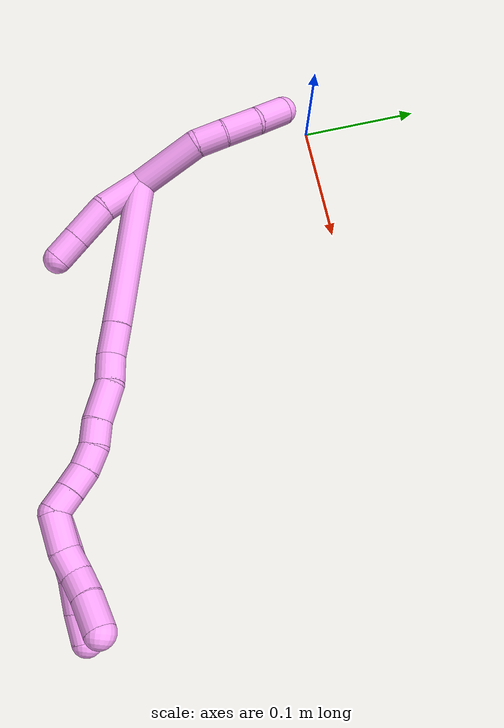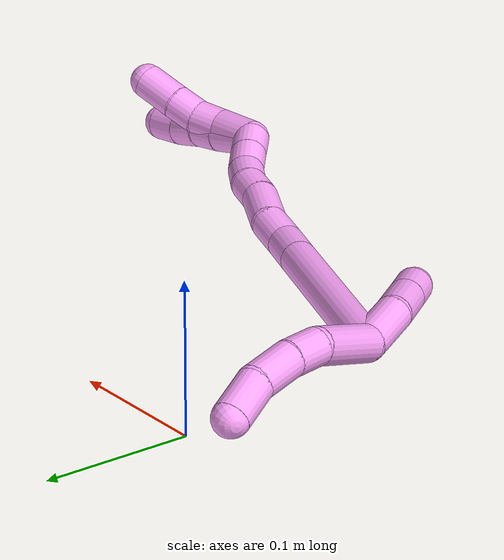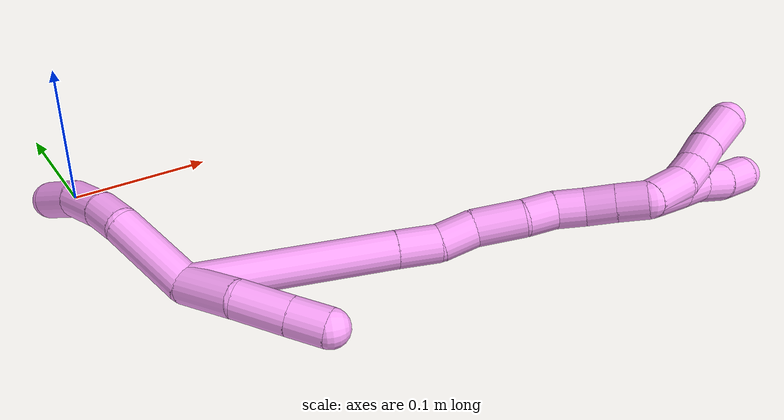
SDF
<sdf version="1.7">
 <world name="default">
  <model name="4">
   <static>0</static>
   <link name="4">
    <collision name="collision-cylinder-e_1_2_8">
     <pose>-0.025122 6e-05 -0.017187 -3.13812 -0.970801 3.13501</pose>
     <geometry><cylinder><radius>0.0125</radius><length>0.060877</length></cylinder></geometry>
     <surface>
      <friction><ode><mu>1.16</mu><mu2>1.16</mu2><slip1>0</slip1><slip2>0</slip2></ode></friction>
      <contact><ode><kp>1e+06</kp><kd>1</kd><max_vel>0</max_vel><min_depth>0.001</min_depth></ode></contact>
     </surface>
    </collision>
    <visual name="visual-cylinder-e_1_2_8">
     <pose>-0.025122 6e-05 -0.017187 -3.13812 -0.970801 3.13501</pose>
     <geometry><cylinder><radius>0.0125</radius><length>0.060877</length></cylinder></geometry>
     <material><ambient>1 0.65098 0.996078 1</ambient></material>
    </visual>
    <collision name="collision-cylinder-e_2_8_9">
     <pose>-0.060521 0.004475 -0.040824 -2.54769 -0.92257 2.03793</pose>
     <geometry><cylinder><radius>0.0125</radius><length>0.025783</length></cylinder></geometry>
     <surface>
      <friction><ode><mu>1.16</mu><mu2>1.16</mu2><slip1>0</slip1><slip2>0</slip2></ode></friction>
      <contact><ode><kp>1e+06</kp><kd>1</kd><max_vel>0</max_vel><min_depth>0.001</min_depth></ode></contact>
     </surface>
    </collision>
    <visual name="visual-cylinder-e_2_8_9">
     <pose>-0.060521 0.004475 -0.040824 -2.54769 -0.92257 2.03793</pose>
     <geometry><cylinder><radius>0.0125</radius><length>0.025783</length></cylinder></geometry>
     <material><ambient>1 0.65098 0.996078 1</ambient></material>
    </visual>
    <collision name="collision-cylinder-e_3_9_10">
     <pose>-0.082228 0.016085 -0.056162 -2.45701 -0.783551 1.71821</pose>
     <geometry><cylinder><radius>0.0125</radius><length>0.03239</length></cylinder></geometry>
     <surface>
      <friction><ode><mu>1.16</mu><mu2>1.16</mu2><slip1>0</slip1><slip2>0</slip2></ode></friction>
      <contact><ode><kp>1e+06</kp><kd>1</kd><max_vel>0</max_vel><min_depth>0.001</min_depth></ode></contact>
     </surface>
    </collision>
    <visual name="visual-cylinder-e_3_9_10">
     <pose>-0.082228 0.016085 -0.056162 -2.45701 -0.783551 1.71821</pose>
     <geometry><cylinder><radius>0.0125</radius><length>0.03239</length></cylinder></geometry>
     <material><ambient>1 0.65098 0.996078 1</ambient></material>
    </visual>
    <collision name="collision-cylinder-e_4_10_6">
     <pose>-0.101335 0.032515 -0.074867 -2.38996 -0.519101 1.18473</pose>
     <geometry><cylinder><radius>0.0125</radius><length>0.03095</length></cylinder></geometry>
     <surface>
      <friction><ode><mu>1.16</mu><mu2>1.16</mu2><slip1>0</slip1><slip2>0</slip2></ode></friction>
      <contact><ode><kp>1e+06</kp><kd>1</kd><max_vel>0</max_vel><min_depth>0.001</min_depth></ode></contact>
     </surface>
    </collision>
    <visual name="visual-cylinder-e_4_10_6">
     <pose>-0.101335 0.032515 -0.074867 -2.38996 -0.519101 1.18473</pose>
     <geometry><cylinder><radius>0.0125</radius><length>0.03095</length></cylinder></geometry>
     <material><ambient>1 0.65098 0.996078 1</ambient></material>
    </visual>
    <collision name="collision-cylinder-e_1_2_11">
     <pose>0.012036 -0.007346 0.014266 0.475509 0.643585 0.161231</pose>
     <geometry><cylinder><radius>0.0125</radius><length>0.040117</length></cylinder></geometry>
     <surface>
      <friction><ode><mu>1.16</mu><mu2>1.16</mu2><slip1>0</slip1><slip2>0</slip2></ode></friction>
      <contact><ode><kp>1e+06</kp><kd>1</kd><max_vel>0</max_vel><min_depth>0.001</min_depth></ode></contact>
     </surface>
    </collision>
    <visual name="visual-cylinder-e_1_2_11">
     <pose>0.012036 -0.007346 0.014266 0.475509 0.643585 0.161231</pose>
     <geometry><cylinder><radius>0.0125</radius><length>0.040117</length></cylinder></geometry>
     <material><ambient>1 0.65098 0.996078 1</ambient></material>
    </visual>
    <collision name="collision-cylinder-e_2_11_12">
     <pose>0.033848 -0.016726 0.043097 0.138828 0.586593 0.041988</pose>
     <geometry><cylinder><radius>0.0125</radius><length>0.035318</length></cylinder></geometry>
     <surface>
      <friction><ode><mu>1.16</mu><mu2>1.16</mu2><slip1>0</slip1><slip2>0</slip2></ode></friction>
      <contact><ode><kp>1e+06</kp><kd>1</kd><max_vel>0</max_vel><min_depth>0.001</min_depth></ode></contact>
     </surface>
    </collision>
    <visual name="visual-cylinder-e_2_11_12">
     <pose>0.033848 -0.016726 0.043097 0.138828 0.586593 0.041988</pose>
     <geometry><cylinder><radius>0.0125</radius><length>0.035318</length></cylinder></geometry>
     <material><ambient>1 0.65098 0.996078 1</ambient></material>
    </visual>
    <collision name="collision-cylinder-e_3_12_5">
     <pose>0.05032 -0.020244 0.067851 0.144522 0.576696 0.042936</pose>
     <geometry><cylinder><radius>0.0125</radius><length>0.024565</length></cylinder></geometry>
     <surface>
      <friction><ode><mu>1.16</mu><mu2>1.16</mu2><slip1>0</slip1><slip2>0</slip2></ode></friction>
      <contact><ode><kp>1e+06</kp><kd>1</kd><max_vel>0</max_vel><min_depth>0.001</min_depth></ode></contact>
     </surface>
    </collision>
    <visual name="visual-cylinder-e_3_12_5">
     <pose>0.05032 -0.020244 0.067851 0.144522 0.576696 0.042936</pose>
     <geometry><cylinder><radius>0.0125</radius><length>0.024565</length></cylinder></geometry>
     <material><ambient>1 0.65098 0.996078 1</ambient></material>
    </visual>
    <collision name="collision-cylinder-e_1_2_13">
     <pose>-1.6e-05 6e-05 0.066316 -0.00091 -0.000236 0</pose>
     <geometry><cylinder><radius>0.0125</radius><length>0.132632</length></cylinder></geometry>
     <surface>
      <friction><ode><mu>1.16</mu><mu2>1.16</mu2><slip1>0</slip1><slip2>0</slip2></ode></friction>
      <contact><ode><kp>1e+06</kp><kd>1</kd><max_vel>0</max_vel><min_depth>0.001</min_depth></ode></contact>
     </surface>
    </collision>
    <visual name="visual-cylinder-e_1_2_13">
     <pose>-1.6e-05 6e-05 0.066316 -0.00091 -0.000236 0</pose>
     <geometry><cylinder><radius>0.0125</radius><length>0.132632</length></cylinder></geometry>
     <material><ambient>1 0.65098 0.996078 1</ambient></material>
    </visual>
    <collision name="collision-cylinder-e_2_13_14">
     <pose>0.000232 0.000194 0.146658 -0.005226 0.018745 -4.9e-05</pose>
     <geometry><cylinder><radius>0.0125</radius><length>0.028057</length></cylinder></geometry>
     <surface>
      <friction><ode><mu>1.16</mu><mu2>1.16</mu2><slip1>0</slip1><slip2>0</slip2></ode></friction>
      <contact><ode><kp>1e+06</kp><kd>1</kd><max_vel>0</max_vel><min_depth>0.001</min_depth></ode></contact>
     </surface>
    </collision>
    <visual name="visual-cylinder-e_2_13_14">
     <pose>0.000232 0.000194 0.146658 -0.005226 0.018745 -4.9e-05</pose>
     <geometry><cylinder><radius>0.0125</radius><length>0.028057</length></cylinder></geometry>
     <material><ambient>1 0.65098 0.996078 1</ambient></material>
    </visual>
    <collision name="collision-cylinder-e_3_14_15">
     <pose>-0.002105 -0.001073 0.172762 0.110488 -0.21071 -0.011695</pose>
     <geometry><cylinder><radius>0.0125</radius><length>0.024854</length></cylinder></geometry>
     <surface>
      <friction><ode><mu>1.16</mu><mu2>1.16</mu2><slip1>0</slip1><slip2>0</slip2></ode></friction>
      <contact><ode><kp>1e+06</kp><kd>1</kd><max_vel>0</max_vel><min_depth>0.001</min_depth></ode></contact>
     </surface>
    </collision>
    <visual name="visual-cylinder-e_3_14_15">
     <pose>-0.002105 -0.001073 0.172762 0.110488 -0.21071 -0.011695</pose>
     <geometry><cylinder><radius>0.0125</radius><length>0.024854</length></cylinder></geometry>
     <material><ambient>1 0.65098 0.996078 1</ambient></material>
    </visual>
    <collision name="collision-cylinder-e_4_15_16">
     <pose>-0.00369 -0.005214 0.20124 0.169166 0.060851 0.005161</pose>
     <geometry><cylinder><radius>0.0125</radius><length>0.033338</length></cylinder></geometry>
     <surface>
      <friction><ode><mu>1.16</mu><mu2>1.16</mu2><slip1>0</slip1><slip2>0</slip2></ode></friction>
      <contact><ode><kp>1e+06</kp><kd>1</kd><max_vel>0</max_vel><min_depth>0.001</min_depth></ode></contact>
     </surface>
    </collision>
    <visual name="visual-cylinder-e_4_15_16">
     <pose>-0.00369 -0.005214 0.20124 0.169166 0.060851 0.005161</pose>
     <geometry><cylinder><radius>0.0125</radius><length>0.033338</length></cylinder></geometry>
     <material><ambient>1 0.65098 0.996078 1</ambient></material>
    </visual>
    <collision name="collision-cylinder-e_5_16_17">
     <pose>-0.003626 -0.008486 0.227947 0.045695 -0.091805 -0.002099</pose>
     <geometry><cylinder><radius>0.0125</radius><length>0.020721</length></cylinder></geometry>
     <surface>
      <friction><ode><mu>1.16</mu><mu2>1.16</mu2><slip1>0</slip1><slip2>0</slip2></ode></friction>
      <contact><ode><kp>1e+06</kp><kd>1</kd><max_vel>0</max_vel><min_depth>0.001</min_depth></ode></contact>
     </surface>
    </collision>
    <visual name="visual-cylinder-e_5_16_17">
     <pose>-0.003626 -0.008486 0.227947 0.045695 -0.091805 -0.002099</pose>
     <geometry><cylinder><radius>0.0125</radius><length>0.020721</length></cylinder></geometry>
     <material><ambient>1 0.65098 0.996078 1</ambient></material>
    </visual>
    <collision name="collision-cylinder-e_6_17_18">
     <pose>-0.002875 -0.010451 0.248002 0.152041 0.170823 0.013043</pose>
     <geometry><cylinder><radius>0.0125</radius><length>0.020017</length></cylinder></geometry>
     <surface>
      <friction><ode><mu>1.16</mu><mu2>1.16</mu2><slip1>0</slip1><slip2>0</slip2></ode></friction>
      <contact><ode><kp>1e+06</kp><kd>1</kd><max_vel>0</max_vel><min_depth>0.001</min_depth></ode></contact>
     </surface>
    </collision>
    <visual name="visual-cylinder-e_6_17_18">
     <pose>-0.002875 -0.010451 0.248002 0.152041 0.170823 0.013043</pose>
     <geometry><cylinder><radius>0.0125</radius><length>0.020017</length></cylinder></geometry>
     <material><ambient>1 0.65098 0.996078 1</ambient></material>
    </visual>
    <collision name="collision-cylinder-e_7_18_19">
     <pose>0.00142 -0.015522 0.266906 0.372471 0.257931 0.048861</pose>
     <geometry><cylinder><radius>0.0125</radius><length>0.020329</length></cylinder></geometry>
     <surface>
      <friction><ode><mu>1.16</mu><mu2>1.16</mu2><slip1>0</slip1><slip2>0</slip2></ode></friction>
      <contact><ode><kp>1e+06</kp><kd>1</kd><max_vel>0</max_vel><min_depth>0.001</min_depth></ode></contact>
     </surface>
    </collision>
    <visual name="visual-cylinder-e_7_18_19">
     <pose>0.00142 -0.015522 0.266906 0.372471 0.257931 0.048861</pose>
     <geometry><cylinder><radius>0.0125</radius><length>0.020329</length></cylinder></geometry>
     <material><ambient>1 0.65098 0.996078 1</ambient></material>
    </visual>
    <collision name="collision-cylinder-e_8_19_1">
     <pose>0.006873 -0.022601 0.285008 0.373135 0.289353 0.054989</pose>
     <geometry><cylinder><radius>0.0125</radius><length>0.020051</length></cylinder></geometry>
     <surface>
      <friction><ode><mu>1.16</mu><mu2>1.16</mu2><slip1>0</slip1><slip2>0</slip2></ode></friction>
      <contact><ode><kp>1e+06</kp><kd>1</kd><max_vel>0</max_vel><min_depth>0.001</min_depth></ode></contact>
     </surface>
    </collision>
    <visual name="visual-cylinder-e_8_19_1">
     <pose>0.006873 -0.022601 0.285008 0.373135 0.289353 0.054989</pose>
     <geometry><cylinder><radius>0.0125</radius><length>0.020051</length></cylinder></geometry>
     <material><ambient>1 0.65098 0.996078 1</ambient></material>
    </visual>
    <collision name="collision-cylinder-e_1_1_20">
     <pose>0.004739 -0.020479 0.307469 -0.394504 -0.328844 0.066294</pose>
     <geometry><cylinder><radius>0.0125</radius><length>0.030931</length></cylinder></geometry>
     <surface>
      <friction><ode><mu>1.16</mu><mu2>1.16</mu2><slip1>0</slip1><slip2>0</slip2></ode></friction>
      <contact><ode><kp>1e+06</kp><kd>1</kd><max_vel>0</max_vel><min_depth>0.001</min_depth></ode></contact>
     </surface>
    </collision>
    <visual name="visual-cylinder-e_1_1_20">
     <pose>0.004739 -0.020479 0.307469 -0.394504 -0.328844 0.066294</pose>
     <geometry><cylinder><radius>0.0125</radius><length>0.030931</length></cylinder></geometry>
     <material><ambient>1 0.65098 0.996078 1</ambient></material>
    </visual>
    <collision name="collision-cylinder-e_2_20_21">
     <pose>-0.003625 -0.011848 0.330178 -0.315801 -0.335167 0.05386</pose>
     <geometry><cylinder><radius>0.0125</radius><length>0.020491</length></cylinder></geometry>
     <surface>
      <friction><ode><mu>1.16</mu><mu2>1.16</mu2><slip1>0</slip1><slip2>0</slip2></ode></friction>
      <contact><ode><kp>1e+06</kp><kd>1</kd><max_vel>0</max_vel><min_depth>0.001</min_depth></ode></contact>
     </surface>
    </collision>
    <visual name="visual-cylinder-e_2_20_21">
     <pose>-0.003625 -0.011848 0.330178 -0.315801 -0.335167 0.05386</pose>
     <geometry><cylinder><radius>0.0125</radius><length>0.020491</length></cylinder></geometry>
     <material><ambient>1 0.65098 0.996078 1</ambient></material>
    </visual>
    <collision name="collision-cylinder-e_3_21_22">
     <pose>-0.008817 -0.00423 0.35086 -0.38192 -0.146156 0.028303</pose>
     <geometry><cylinder><radius>0.0125</radius><length>0.025022</length></cylinder></geometry>
     <surface>
      <friction><ode><mu>1.16</mu><mu2>1.16</mu2><slip1>0</slip1><slip2>0</slip2></ode></friction>
      <contact><ode><kp>1e+06</kp><kd>1</kd><max_vel>0</max_vel><min_depth>0.001</min_depth></ode></contact>
     </surface>
    </collision>
    <visual name="visual-cylinder-e_3_21_22">
     <pose>-0.008817 -0.00423 0.35086 -0.38192 -0.146156 0.028303</pose>
     <geometry><cylinder><radius>0.0125</radius><length>0.025022</length></cylinder></geometry>
     <material><ambient>1 0.65098 0.996078 1</ambient></material>
    </visual>
    <collision name="collision-cylinder-e_4_22_4">
     <pose>-0.014286 0.003523 0.373096 -0.284172 -0.314809 0.045401</pose>
     <geometry><cylinder><radius>0.0125</radius><length>0.023556</length></cylinder></geometry>
     <surface>
      <friction><ode><mu>1.16</mu><mu2>1.16</mu2><slip1>0</slip1><slip2>0</slip2></ode></friction>
      <contact><ode><kp>1e+06</kp><kd>1</kd><max_vel>0</max_vel><min_depth>0.001</min_depth></ode></contact>
     </surface>
    </collision>
    <visual name="visual-cylinder-e_4_22_4">
     <pose>-0.014286 0.003523 0.373096 -0.284172 -0.314809 0.045401</pose>
     <geometry><cylinder><radius>0.0125</radius><length>0.023556</length></cylinder></geometry>
     <material><ambient>1 0.65098 0.996078 1</ambient></material>
    </visual>
    <collision name="collision-cylinder-e_1_1_23">
     <pose>0.003855 -0.023156 0.307843 -0.209207 -0.392608 0.04175</pose>
     <geometry><cylinder><radius>0.0125</radius><length>0.030731</length></cylinder></geometry>
     <surface>
      <friction><ode><mu>1.16</mu><mu2>1.16</mu2><slip1>0</slip1><slip2>0</slip2></ode></friction>
      <contact><ode><kp>1e+06</kp><kd>1</kd><max_vel>0</max_vel><min_depth>0.001</min_depth></ode></contact>
     </surface>
    </collision>
    <visual name="visual-cylinder-e_1_1_23">
     <pose>0.003855 -0.023156 0.307843 -0.209207 -0.392608 0.04175</pose>
     <geometry><cylinder><radius>0.0125</radius><length>0.030731</length></cylinder></geometry>
     <material><ambient>1 0.65098 0.996078 1</ambient></material>
    </visual>
    <collision name="collision-cylinder-e_2_23_24">
     <pose>-0.008389 -0.018649 0.32971 -0.192853 -0.664227 0.066695</pose>
     <geometry><cylinder><radius>0.0125</radius><length>0.020652</length></cylinder></geometry>
     <surface>
      <friction><ode><mu>1.16</mu><mu2>1.16</mu2><slip1>0</slip1><slip2>0</slip2></ode></friction>
      <contact><ode><kp>1e+06</kp><kd>1</kd><max_vel>0</max_vel><min_depth>0.001</min_depth></ode></contact>
     </surface>
    </collision>
    <visual name="visual-cylinder-e_2_23_24">
     <pose>-0.008389 -0.018649 0.32971 -0.192853 -0.664227 0.066695</pose>
     <geometry><cylinder><radius>0.0125</radius><length>0.020652</length></cylinder></geometry>
     <material><ambient>1 0.65098 0.996078 1</ambient></material>
    </visual>
    <collision name="collision-cylinder-e_3_24_25">
     <pose>-0.021516 -0.018024 0.345016 0.12666 -0.741249 -0.049274</pose>
     <geometry><cylinder><radius>0.0125</radius><length>0.020026</length></cylinder></geometry>
     <surface>
      <friction><ode><mu>1.16</mu><mu2>1.16</mu2><slip1>0</slip1><slip2>0</slip2></ode></friction>
      <contact><ode><kp>1e+06</kp><kd>1</kd><max_vel>0</max_vel><min_depth>0.001</min_depth></ode></contact>
     </surface>
    </collision>
    <visual name="visual-cylinder-e_3_24_25">
     <pose>-0.021516 -0.018024 0.345016 0.12666 -0.741249 -0.049274</pose>
     <geometry><cylinder><radius>0.0125</radius><length>0.020026</length></cylinder></geometry>
     <material><ambient>1 0.65098 0.996078 1</ambient></material>
    </visual>
    <collision name="collision-cylinder-e_4_25_3">
     <pose>-0.036952 -0.020166 0.363641 0.10662 -0.652094 -0.03608</pose>
     <geometry><cylinder><radius>0.0125</radius><length>0.028591</length></cylinder></geometry>
     <surface>
      <friction><ode><mu>1.16</mu><mu2>1.16</mu2><slip1>0</slip1><slip2>0</slip2></ode></friction>
      <contact><ode><kp>1e+06</kp><kd>1</kd><max_vel>0</max_vel><min_depth>0.001</min_depth></ode></contact>
     </surface>
    </collision>
    <visual name="visual-cylinder-e_4_25_3">
     <pose>-0.036952 -0.020166 0.363641 0.10662 -0.652094 -0.03608</pose>
     <geometry><cylinder><radius>0.0125</radius><length>0.028591</length></cylinder></geometry>
     <material><ambient>1 0.65098 0.996078 1</ambient></material>
    </visual>
    <collision name="collision-sphere-3">
     <pose>-0.045627 -0.021375 0.374938 0 -0 0</pose>
     <geometry><sphere><radius>0.0125</radius></sphere></geometry>
     <surface>
      <friction><ode><mu>1.16</mu><mu2>1.16</mu2><slip1>0</slip1><slip2>0</slip2></ode></friction>
      <contact><ode><kp>1e+06</kp><kd>1</kd><max_vel>0</max_vel><min_depth>0.001</min_depth></ode></contact>
     </surface>
    </collision>
    <visual name="visual-sphere-3">
     <pose>-0.045627 -0.021375 0.374938 0 -0 0</pose>
     <geometry><sphere><radius>0.0125</radius></sphere></geometry>
     <material><ambient>1 0.65098 0.996078 1</ambient></material>
    </visual>
    <collision name="collision-sphere-25">
     <pose>-0.028277 -0.018957 0.352343 0 -0 0</pose>
     <geometry><sphere><radius>0.0125</radius></sphere></geometry>
     <surface>
      <friction><ode><mu>1.16</mu><mu2>1.16</mu2><slip1>0</slip1><slip2>0</slip2></ode></friction>
      <contact><ode><kp>1e+06</kp><kd>1</kd><max_vel>0</max_vel><min_depth>0.001</min_depth></ode></contact>
     </surface>
    </collision>
    <visual name="visual-sphere-25">
     <pose>-0.028277 -0.018957 0.352343 0 -0 0</pose>
     <geometry><sphere><radius>0.0125</radius></sphere></geometry>
     <material><ambient>1 0.65098 0.996078 1</ambient></material>
    </visual>
    <collision name="collision-sphere-24">
     <pose>-0.014755 -0.017091 0.33769 0 -0 0</pose>
     <geometry><sphere><radius>0.0125</radius></sphere></geometry>
     <surface>
      <friction><ode><mu>1.16</mu><mu2>1.16</mu2><slip1>0</slip1><slip2>0</slip2></ode></friction>
      <contact><ode><kp>1e+06</kp><kd>1</kd><max_vel>0</max_vel><min_depth>0.001</min_depth></ode></contact>
     </surface>
    </collision>
    <visual name="visual-sphere-24">
     <pose>-0.014755 -0.017091 0.33769 0 -0 0</pose>
     <geometry><sphere><radius>0.0125</radius></sphere></geometry>
     <material><ambient>1 0.65098 0.996078 1</ambient></material>
    </visual>
    <collision name="collision-sphere-23">
     <pose>-0.002024 -0.020207 0.32173 0 -0 0</pose>
     <geometry><sphere><radius>0.0125</radius></sphere></geometry>
     <surface>
      <friction><ode><mu>1.16</mu><mu2>1.16</mu2><slip1>0</slip1><slip2>0</slip2></ode></friction>
      <contact><ode><kp>1e+06</kp><kd>1</kd><max_vel>0</max_vel><min_depth>0.001</min_depth></ode></contact>
     </surface>
    </collision>
    <visual name="visual-sphere-23">
     <pose>-0.002024 -0.020207 0.32173 0 -0 0</pose>
     <geometry><sphere><radius>0.0125</radius></sphere></geometry>
     <material><ambient>1 0.65098 0.996078 1</ambient></material>
    </visual>
    <collision name="collision-sphere-4">
     <pose>-0.017933 0.006663 0.383847 0 -0 0</pose>
     <geometry><sphere><radius>0.0125</radius></sphere></geometry>
     <surface>
      <friction><ode><mu>1.16</mu><mu2>1.16</mu2><slip1>0</slip1><slip2>0</slip2></ode></friction>
      <contact><ode><kp>1e+06</kp><kd>1</kd><max_vel>0</max_vel><min_depth>0.001</min_depth></ode></contact>
     </surface>
    </collision>
    <visual name="visual-sphere-4">
     <pose>-0.017933 0.006663 0.383847 0 -0 0</pose>
     <geometry><sphere><radius>0.0125</radius></sphere></geometry>
     <material><ambient>1 0.65098 0.996078 1</ambient></material>
    </visual>
    <collision name="collision-sphere-22">
     <pose>-0.010639 0.000383 0.362346 0 -0 0</pose>
     <geometry><sphere><radius>0.0125</radius></sphere></geometry>
     <surface>
      <friction><ode><mu>1.16</mu><mu2>1.16</mu2><slip1>0</slip1><slip2>0</slip2></ode></friction>
      <contact><ode><kp>1e+06</kp><kd>1</kd><max_vel>0</max_vel><min_depth>0.001</min_depth></ode></contact>
     </surface>
    </collision>
    <visual name="visual-sphere-22">
     <pose>-0.010639 0.000383 0.362346 0 -0 0</pose>
     <geometry><sphere><radius>0.0125</radius></sphere></geometry>
     <material><ambient>1 0.65098 0.996078 1</ambient></material>
    </visual>
    <collision name="collision-sphere-21">
     <pose>-0.006995 -0.008843 0.339375 0 -0 0</pose>
     <geometry><sphere><radius>0.0125</radius></sphere></geometry>
     <surface>
      <friction><ode><mu>1.16</mu><mu2>1.16</mu2><slip1>0</slip1><slip2>0</slip2></ode></friction>
      <contact><ode><kp>1e+06</kp><kd>1</kd><max_vel>0</max_vel><min_depth>0.001</min_depth></ode></contact>
     </surface>
    </collision>
    <visual name="visual-sphere-21">
     <pose>-0.006995 -0.008843 0.339375 0 -0 0</pose>
     <geometry><sphere><radius>0.0125</radius></sphere></geometry>
     <material><ambient>1 0.65098 0.996078 1</ambient></material>
    </visual>
    <collision name="collision-sphere-20">
     <pose>-0.000255 -0.014853 0.320981 0 -0 0</pose>
     <geometry><sphere><radius>0.0125</radius></sphere></geometry>
     <surface>
      <friction><ode><mu>1.16</mu><mu2>1.16</mu2><slip1>0</slip1><slip2>0</slip2></ode></friction>
      <contact><ode><kp>1e+06</kp><kd>1</kd><max_vel>0</max_vel><min_depth>0.001</min_depth></ode></contact>
     </surface>
    </collision>
    <visual name="visual-sphere-20">
     <pose>-0.000255 -0.014853 0.320981 0 -0 0</pose>
     <geometry><sphere><radius>0.0125</radius></sphere></geometry>
     <material><ambient>1 0.65098 0.996078 1</ambient></material>
    </visual>
    <collision name="collision-sphere-11">
     <pose>0.024073 -0.014691 0.028531 0 -0 0</pose>
     <geometry><sphere><radius>0.0125</radius></sphere></geometry>
     <surface>
      <friction><ode><mu>1.16</mu><mu2>1.16</mu2><slip1>0</slip1><slip2>0</slip2></ode></friction>
      <contact><ode><kp>1e+06</kp><kd>1</kd><max_vel>0</max_vel><min_depth>0.001</min_depth></ode></contact>
     </surface>
    </collision>
    <visual name="visual-sphere-11">
     <pose>0.024073 -0.014691 0.028531 0 -0 0</pose>
     <geometry><sphere><radius>0.0125</radius></sphere></geometry>
     <material><ambient>1 0.65098 0.996078 1</ambient></material>
    </visual>
    <collision name="collision-sphere-6">
     <pose>-0.109012 0.04169 -0.084683 0 -0 0</pose>
     <geometry><sphere><radius>0.0125</radius></sphere></geometry>
     <surface>
      <friction><ode><mu>1.16</mu><mu2>1.16</mu2><slip1>0</slip1><slip2>0</slip2></ode></friction>
      <contact><ode><kp>1e+06</kp><kd>1</kd><max_vel>0</max_vel><min_depth>0.001</min_depth></ode></contact>
     </surface>
    </collision>
    <visual name="visual-sphere-6">
     <pose>-0.109012 0.04169 -0.084683 0 -0 0</pose>
     <geometry><sphere><radius>0.0125</radius></sphere></geometry>
     <material><ambient>1 0.65098 0.996078 1</ambient></material>
    </visual>
    <collision name="collision-sphere-10">
     <pose>-0.093658 0.02334 -0.06505 0 -0 0</pose>
     <geometry><sphere><radius>0.0125</radius></sphere></geometry>
     <surface>
      <friction><ode><mu>1.16</mu><mu2>1.16</mu2><slip1>0</slip1><slip2>0</slip2></ode></friction>
      <contact><ode><kp>1e+06</kp><kd>1</kd><max_vel>0</max_vel><min_depth>0.001</min_depth></ode></contact>
     </surface>
    </collision>
    <visual name="visual-sphere-10">
     <pose>-0.093658 0.02334 -0.06505 0 -0 0</pose>
     <geometry><sphere><radius>0.0125</radius></sphere></geometry>
     <material><ambient>1 0.65098 0.996078 1</ambient></material>
    </visual>
    <collision name="collision-sphere-9">
     <pose>-0.070797 0.008831 -0.047275 0 -0 0</pose>
     <geometry><sphere><radius>0.0125</radius></sphere></geometry>
     <surface>
      <friction><ode><mu>1.16</mu><mu2>1.16</mu2><slip1>0</slip1><slip2>0</slip2></ode></friction>
      <contact><ode><kp>1e+06</kp><kd>1</kd><max_vel>0</max_vel><min_depth>0.001</min_depth></ode></contact>
     </surface>
    </collision>
    <visual name="visual-sphere-9">
     <pose>-0.070797 0.008831 -0.047275 0 -0 0</pose>
     <geometry><sphere><radius>0.0125</radius></sphere></geometry>
     <material><ambient>1 0.65098 0.996078 1</ambient></material>
    </visual>
    <collision name="collision-sphere-2">
     <geometry><sphere><radius>0.0125</radius></sphere></geometry>
     <surface>
      <friction><ode><mu>1.16</mu><mu2>1.16</mu2><slip1>0</slip1><slip2>0</slip2></ode></friction>
      <contact><ode><kp>1e+06</kp><kd>1</kd><max_vel>0</max_vel><min_depth>0.001</min_depth></ode></contact>
     </surface>
    </collision>
    <visual name="visual-sphere-2">
     <geometry><sphere><radius>0.0125</radius></sphere></geometry>
     <material><ambient>1 0.65098 0.996078 1</ambient></material>
    </visual>
    <collision name="collision-sphere-19">
     <pose>0.004012 -0.019099 0.276061 0 -0 0</pose>
     <geometry><sphere><radius>0.0125</radius></sphere></geometry>
     <surface>
      <friction><ode><mu>1.16</mu><mu2>1.16</mu2><slip1>0</slip1><slip2>0</slip2></ode></friction>
      <contact><ode><kp>1e+06</kp><kd>1</kd><max_vel>0</max_vel><min_depth>0.001</min_depth></ode></contact>
     </surface>
    </collision>
    <visual name="visual-sphere-19">
     <pose>0.004012 -0.019099 0.276061 0 -0 0</pose>
     <geometry><sphere><radius>0.0125</radius></sphere></geometry>
     <material><ambient>1 0.65098 0.996078 1</ambient></material>
    </visual>
    <collision name="collision-sphere-8">
     <pose>-0.050244 0.000119 -0.034373 0 -0 0</pose>
     <geometry><sphere><radius>0.0125</radius></sphere></geometry>
     <surface>
      <friction><ode><mu>1.16</mu><mu2>1.16</mu2><slip1>0</slip1><slip2>0</slip2></ode></friction>
      <contact><ode><kp>1e+06</kp><kd>1</kd><max_vel>0</max_vel><min_depth>0.001</min_depth></ode></contact>
     </surface>
    </collision>
    <visual name="visual-sphere-8">
     <pose>-0.050244 0.000119 -0.034373 0 -0 0</pose>
     <geometry><sphere><radius>0.0125</radius></sphere></geometry>
     <material><ambient>1 0.65098 0.996078 1</ambient></material>
    </visual>
    <collision name="collision-sphere-12">
     <pose>0.043622 -0.018762 0.057662 0 -0 0</pose>
     <geometry><sphere><radius>0.0125</radius></sphere></geometry>
     <surface>
      <friction><ode><mu>1.16</mu><mu2>1.16</mu2><slip1>0</slip1><slip2>0</slip2></ode></friction>
      <contact><ode><kp>1e+06</kp><kd>1</kd><max_vel>0</max_vel><min_depth>0.001</min_depth></ode></contact>
     </surface>
    </collision>
    <visual name="visual-sphere-12">
     <pose>0.043622 -0.018762 0.057662 0 -0 0</pose>
     <geometry><sphere><radius>0.0125</radius></sphere></geometry>
     <material><ambient>1 0.65098 0.996078 1</ambient></material>
    </visual>
    <collision name="collision-sphere-5">
     <pose>0.057017 -0.021727 0.07804 0 -0 0</pose>
     <geometry><sphere><radius>0.0125</radius></sphere></geometry>
     <surface>
      <friction><ode><mu>1.16</mu><mu2>1.16</mu2><slip1>0</slip1><slip2>0</slip2></ode></friction>
      <contact><ode><kp>1e+06</kp><kd>1</kd><max_vel>0</max_vel><min_depth>0.001</min_depth></ode></contact>
     </surface>
    </collision>
    <visual name="visual-sphere-5">
     <pose>0.057017 -0.021727 0.07804 0 -0 0</pose>
     <geometry><sphere><radius>0.0125</radius></sphere></geometry>
     <material><ambient>1 0.65098 0.996078 1</ambient></material>
    </visual>
    <collision name="collision-sphere-13">
     <pose>-3.1e-05 0.000121 0.132632 0 -0 0</pose>
     <geometry><sphere><radius>0.0125</radius></sphere></geometry>
     <surface>
      <friction><ode><mu>1.16</mu><mu2>1.16</mu2><slip1>0</slip1><slip2>0</slip2></ode></friction>
      <contact><ode><kp>1e+06</kp><kd>1</kd><max_vel>0</max_vel><min_depth>0.001</min_depth></ode></contact>
     </surface>
    </collision>
    <visual name="visual-sphere-13">
     <pose>-3.1e-05 0.000121 0.132632 0 -0 0</pose>
     <geometry><sphere><radius>0.0125</radius></sphere></geometry>
     <material><ambient>1 0.65098 0.996078 1</ambient></material>
    </visual>
    <collision name="collision-sphere-14">
     <pose>0.000495 0.000267 0.160684 0 -0 0</pose>
     <geometry><sphere><radius>0.0125</radius></sphere></geometry>
     <surface>
      <friction><ode><mu>1.16</mu><mu2>1.16</mu2><slip1>0</slip1><slip2>0</slip2></ode></friction>
      <contact><ode><kp>1e+06</kp><kd>1</kd><max_vel>0</max_vel><min_depth>0.001</min_depth></ode></contact>
     </surface>
    </collision>
    <visual name="visual-sphere-14">
     <pose>0.000495 0.000267 0.160684 0 -0 0</pose>
     <geometry><sphere><radius>0.0125</radius></sphere></geometry>
     <material><ambient>1 0.65098 0.996078 1</ambient></material>
    </visual>
    <collision name="collision-sphere-15">
     <pose>-0.004704 -0.002413 0.184839 0 -0 0</pose>
     <geometry><sphere><radius>0.0125</radius></sphere></geometry>
     <surface>
      <friction><ode><mu>1.16</mu><mu2>1.16</mu2><slip1>0</slip1><slip2>0</slip2></ode></friction>
      <contact><ode><kp>1e+06</kp><kd>1</kd><max_vel>0</max_vel><min_depth>0.001</min_depth></ode></contact>
     </surface>
    </collision>
    <visual name="visual-sphere-15">
     <pose>-0.004704 -0.002413 0.184839 0 -0 0</pose>
     <geometry><sphere><radius>0.0125</radius></sphere></geometry>
     <material><ambient>1 0.65098 0.996078 1</ambient></material>
    </visual>
    <collision name="collision-sphere-16">
     <pose>-0.002676 -0.008015 0.217641 0 -0 0</pose>
     <geometry><sphere><radius>0.0125</radius></sphere></geometry>
     <surface>
      <friction><ode><mu>1.16</mu><mu2>1.16</mu2><slip1>0</slip1><slip2>0</slip2></ode></friction>
      <contact><ode><kp>1e+06</kp><kd>1</kd><max_vel>0</max_vel><min_depth>0.001</min_depth></ode></contact>
     </surface>
    </collision>
    <visual name="visual-sphere-16">
     <pose>-0.002676 -0.008015 0.217641 0 -0 0</pose>
     <geometry><sphere><radius>0.0125</radius></sphere></geometry>
     <material><ambient>1 0.65098 0.996078 1</ambient></material>
    </visual>
    <collision name="collision-sphere-17">
     <pose>-0.004576 -0.008958 0.238253 0 -0 0</pose>
     <geometry><sphere><radius>0.0125</radius></sphere></geometry>
     <surface>
      <friction><ode><mu>1.16</mu><mu2>1.16</mu2><slip1>0</slip1><slip2>0</slip2></ode></friction>
      <contact><ode><kp>1e+06</kp><kd>1</kd><max_vel>0</max_vel><min_depth>0.001</min_depth></ode></contact>
     </surface>
    </collision>
    <visual name="visual-sphere-17">
     <pose>-0.004576 -0.008958 0.238253 0 -0 0</pose>
     <geometry><sphere><radius>0.0125</radius></sphere></geometry>
     <material><ambient>1 0.65098 0.996078 1</ambient></material>
    </visual>
    <collision name="collision-sphere-18">
     <pose>-0.001173 -0.011945 0.257752 0 -0 0</pose>
     <geometry><sphere><radius>0.0125</radius></sphere></geometry>
     <surface>
      <friction><ode><mu>1.16</mu><mu2>1.16</mu2><slip1>0</slip1><slip2>0</slip2></ode></friction>
      <contact><ode><kp>1e+06</kp><kd>1</kd><max_vel>0</max_vel><min_depth>0.001</min_depth></ode></contact>
     </surface>
    </collision>
    <visual name="visual-sphere-18">
     <pose>-0.001173 -0.011945 0.257752 0 -0 0</pose>
     <geometry><sphere><radius>0.0125</radius></sphere></geometry>
     <material><ambient>1 0.65098 0.996078 1</ambient></material>
    </visual>
    <collision name="collision-sphere-1">
     <pose>0.009734 -0.026104 0.293956 0 -0 0</pose>
     <geometry><sphere><radius>0.0125</radius></sphere></geometry>
     <surface>
      <friction><ode><mu>1.16</mu><mu2>1.16</mu2><slip1>0</slip1><slip2>0</slip2></ode></friction>
      <contact><ode><kp>1e+06</kp><kd>1</kd><max_vel>0</max_vel><min_depth>0.001</min_depth></ode></contact>
     </surface>
    </collision>
    <visual name="visual-sphere-1">
     <pose>0.009734 -0.026104 0.293956 0 -0 0</pose>
     <geometry><sphere><radius>0.0125</radius></sphere></geometry>
     <material><ambient>1 0.65098 0.996078 1</ambient></material>
    </visual>
    <inertial>
     <pose>-0.010852 -0.005347 0.14625 0 -0 0</pose>
     <mass>0.75</mass>
     <inertia>
      <ixx>0.000231</ixx>
      <ixy>0</ixy>
      <ixz>0</ixz>
      <iyy>0.000284</iyy>
      <iyz>0</iyz>
      <izz>5.6e-05</izz>
     </inertia>
    </inertial>
   </link>
   <pose>0.020655 -0.156291 0.011431 -1.52143 0.420889 -1.8902</pose>
  </model>
 </world>
</sdf>
